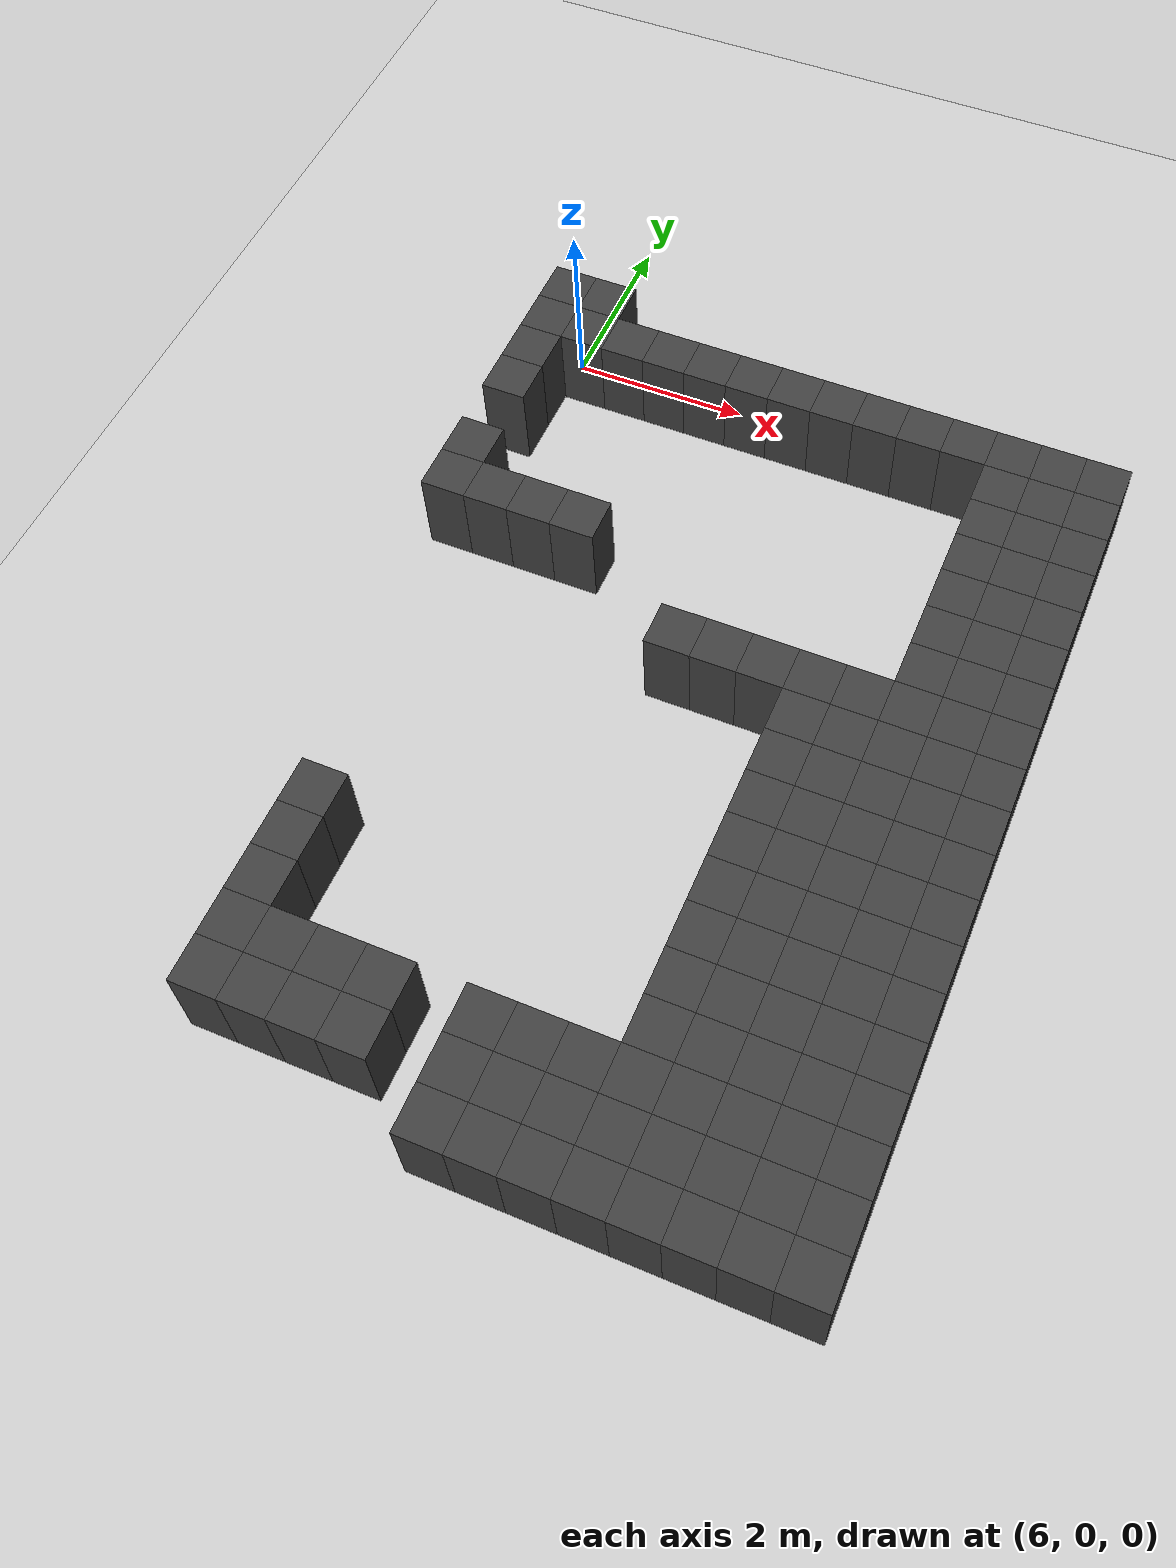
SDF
<sdf version="1.7">
 <world name="map_14802">
  <model name="ground_plane">
   <static>true</static>
   <link name="link">
    <collision name="collision">
     <geometry><plane><normal>0 0 1</normal><size>200 200</size></plane></geometry>
    </collision>
    <visual name="visual">
     <geometry><plane><normal>0 0 1</normal><size>200 200</size></plane></geometry>
     <material><ambient>0.8 0.8 0.8 1</ambient><diffuse>0.8 0.8 0.8 1</diffuse></material>
    </visual>
   </link>
  </model>
  <model name="maze_environment">
   <static>true</static>
   <link name="wall_888">
    <pose>5.750 0.250 0.500 0 0 0</pose>
    <collision name="col"><geometry><box><size>0.5 0.5 1.0</size></box></geometry></collision>
    <visual name="vis">
     <geometry><box><size>0.5 0.5 1.0</size></box></geometry>
     <material><ambient>0.15 0.15 0.15 1</ambient><diffuse>0.25 0.25 0.25 1</diffuse></material>
    </visual>
   </link>
   <link name="wall_889">
    <pose>6.250 0.250 0.500 0 0 0</pose>
    <collision name="col"><geometry><box><size>0.5 0.5 1.0</size></box></geometry></collision>
    <visual name="vis">
     <geometry><box><size>0.5 0.5 1.0</size></box></geometry>
     <material><ambient>0.15 0.15 0.15 1</ambient><diffuse>0.25 0.25 0.25 1</diffuse></material>
    </visual>
   </link>
   <link name="wall_926">
    <pose>5.750 -0.250 0.500 0 0 0</pose>
    <collision name="col"><geometry><box><size>0.5 0.5 1.0</size></box></geometry></collision>
    <visual name="vis">
     <geometry><box><size>0.5 0.5 1.0</size></box></geometry>
     <material><ambient>0.15 0.15 0.15 1</ambient><diffuse>0.25 0.25 0.25 1</diffuse></material>
    </visual>
   </link>
   <link name="wall_927">
    <pose>6.250 -0.250 0.500 0 0 0</pose>
    <collision name="col"><geometry><box><size>0.5 0.5 1.0</size></box></geometry></collision>
    <visual name="vis">
     <geometry><box><size>0.5 0.5 1.0</size></box></geometry>
     <material><ambient>0.15 0.15 0.15 1</ambient><diffuse>0.25 0.25 0.25 1</diffuse></material>
    </visual>
   </link>
   <link name="wall_928">
    <pose>6.750 -0.250 0.500 0 0 0</pose>
    <collision name="col"><geometry><box><size>0.5 0.5 1.0</size></box></geometry></collision>
    <visual name="vis">
     <geometry><box><size>0.5 0.5 1.0</size></box></geometry>
     <material><ambient>0.15 0.15 0.15 1</ambient><diffuse>0.25 0.25 0.25 1</diffuse></material>
    </visual>
   </link>
   <link name="wall_929">
    <pose>7.250 -0.250 0.500 0 0 0</pose>
    <collision name="col"><geometry><box><size>0.5 0.5 1.0</size></box></geometry></collision>
    <visual name="vis">
     <geometry><box><size>0.5 0.5 1.0</size></box></geometry>
     <material><ambient>0.15 0.15 0.15 1</ambient><diffuse>0.25 0.25 0.25 1</diffuse></material>
    </visual>
   </link>
   <link name="wall_930">
    <pose>7.750 -0.250 0.500 0 0 0</pose>
    <collision name="col"><geometry><box><size>0.5 0.5 1.0</size></box></geometry></collision>
    <visual name="vis">
     <geometry><box><size>0.5 0.5 1.0</size></box></geometry>
     <material><ambient>0.15 0.15 0.15 1</ambient><diffuse>0.25 0.25 0.25 1</diffuse></material>
    </visual>
   </link>
   <link name="wall_931">
    <pose>8.250 -0.250 0.500 0 0 0</pose>
    <collision name="col"><geometry><box><size>0.5 0.5 1.0</size></box></geometry></collision>
    <visual name="vis">
     <geometry><box><size>0.5 0.5 1.0</size></box></geometry>
     <material><ambient>0.15 0.15 0.15 1</ambient><diffuse>0.25 0.25 0.25 1</diffuse></material>
    </visual>
   </link>
   <link name="wall_932">
    <pose>8.750 -0.250 0.500 0 0 0</pose>
    <collision name="col"><geometry><box><size>0.5 0.5 1.0</size></box></geometry></collision>
    <visual name="vis">
     <geometry><box><size>0.5 0.5 1.0</size></box></geometry>
     <material><ambient>0.15 0.15 0.15 1</ambient><diffuse>0.25 0.25 0.25 1</diffuse></material>
    </visual>
   </link>
   <link name="wall_933">
    <pose>9.250 -0.250 0.500 0 0 0</pose>
    <collision name="col"><geometry><box><size>0.5 0.5 1.0</size></box></geometry></collision>
    <visual name="vis">
     <geometry><box><size>0.5 0.5 1.0</size></box></geometry>
     <material><ambient>0.15 0.15 0.15 1</ambient><diffuse>0.25 0.25 0.25 1</diffuse></material>
    </visual>
   </link>
   <link name="wall_934">
    <pose>9.750 -0.250 0.500 0 0 0</pose>
    <collision name="col"><geometry><box><size>0.5 0.5 1.0</size></box></geometry></collision>
    <visual name="vis">
     <geometry><box><size>0.5 0.5 1.0</size></box></geometry>
     <material><ambient>0.15 0.15 0.15 1</ambient><diffuse>0.25 0.25 0.25 1</diffuse></material>
    </visual>
   </link>
   <link name="wall_935">
    <pose>10.250 -0.250 0.500 0 0 0</pose>
    <collision name="col"><geometry><box><size>0.5 0.5 1.0</size></box></geometry></collision>
    <visual name="vis">
     <geometry><box><size>0.5 0.5 1.0</size></box></geometry>
     <material><ambient>0.15 0.15 0.15 1</ambient><diffuse>0.25 0.25 0.25 1</diffuse></material>
    </visual>
   </link>
   <link name="wall_936">
    <pose>10.750 -0.250 0.500 0 0 0</pose>
    <collision name="col"><geometry><box><size>0.5 0.5 1.0</size></box></geometry></collision>
    <visual name="vis">
     <geometry><box><size>0.5 0.5 1.0</size></box></geometry>
     <material><ambient>0.15 0.15 0.15 1</ambient><diffuse>0.25 0.25 0.25 1</diffuse></material>
    </visual>
   </link>
   <link name="wall_937">
    <pose>11.250 -0.250 0.500 0 0 0</pose>
    <collision name="col"><geometry><box><size>0.5 0.5 1.0</size></box></geometry></collision>
    <visual name="vis">
     <geometry><box><size>0.5 0.5 1.0</size></box></geometry>
     <material><ambient>0.15 0.15 0.15 1</ambient><diffuse>0.25 0.25 0.25 1</diffuse></material>
    </visual>
   </link>
   <link name="wall_938">
    <pose>11.750 -0.250 0.500 0 0 0</pose>
    <collision name="col"><geometry><box><size>0.5 0.5 1.0</size></box></geometry></collision>
    <visual name="vis">
     <geometry><box><size>0.5 0.5 1.0</size></box></geometry>
     <material><ambient>0.15 0.15 0.15 1</ambient><diffuse>0.25 0.25 0.25 1</diffuse></material>
    </visual>
   </link>
   <link name="wall_939">
    <pose>12.250 -0.250 0.500 0 0 0</pose>
    <collision name="col"><geometry><box><size>0.5 0.5 1.0</size></box></geometry></collision>
    <visual name="vis">
     <geometry><box><size>0.5 0.5 1.0</size></box></geometry>
     <material><ambient>0.15 0.15 0.15 1</ambient><diffuse>0.25 0.25 0.25 1</diffuse></material>
    </visual>
   </link>
   <link name="wall_964">
    <pose>5.750 -0.750 0.500 0 0 0</pose>
    <collision name="col"><geometry><box><size>0.5 0.5 1.0</size></box></geometry></collision>
    <visual name="vis">
     <geometry><box><size>0.5 0.5 1.0</size></box></geometry>
     <material><ambient>0.15 0.15 0.15 1</ambient><diffuse>0.25 0.25 0.25 1</diffuse></material>
    </visual>
   </link>
   <link name="wall_965">
    <pose>11.250 -0.750 0.500 0 0 0</pose>
    <collision name="col"><geometry><box><size>0.5 0.5 1.0</size></box></geometry></collision>
    <visual name="vis">
     <geometry><box><size>0.5 0.5 1.0</size></box></geometry>
     <material><ambient>0.15 0.15 0.15 1</ambient><diffuse>0.25 0.25 0.25 1</diffuse></material>
    </visual>
   </link>
   <link name="wall_966">
    <pose>11.750 -0.750 0.500 0 0 0</pose>
    <collision name="col"><geometry><box><size>0.5 0.5 1.0</size></box></geometry></collision>
    <visual name="vis">
     <geometry><box><size>0.5 0.5 1.0</size></box></geometry>
     <material><ambient>0.15 0.15 0.15 1</ambient><diffuse>0.25 0.25 0.25 1</diffuse></material>
    </visual>
   </link>
   <link name="wall_967">
    <pose>12.250 -0.750 0.500 0 0 0</pose>
    <collision name="col"><geometry><box><size>0.5 0.5 1.0</size></box></geometry></collision>
    <visual name="vis">
     <geometry><box><size>0.5 0.5 1.0</size></box></geometry>
     <material><ambient>0.15 0.15 0.15 1</ambient><diffuse>0.25 0.25 0.25 1</diffuse></material>
    </visual>
   </link>
   <link name="wall_988">
    <pose>5.750 -1.250 0.500 0 0 0</pose>
    <collision name="col"><geometry><box><size>0.5 0.5 1.0</size></box></geometry></collision>
    <visual name="vis">
     <geometry><box><size>0.5 0.5 1.0</size></box></geometry>
     <material><ambient>0.15 0.15 0.15 1</ambient><diffuse>0.25 0.25 0.25 1</diffuse></material>
    </visual>
   </link>
   <link name="wall_989">
    <pose>11.250 -1.250 0.500 0 0 0</pose>
    <collision name="col"><geometry><box><size>0.5 0.5 1.0</size></box></geometry></collision>
    <visual name="vis">
     <geometry><box><size>0.5 0.5 1.0</size></box></geometry>
     <material><ambient>0.15 0.15 0.15 1</ambient><diffuse>0.25 0.25 0.25 1</diffuse></material>
    </visual>
   </link>
   <link name="wall_990">
    <pose>11.750 -1.250 0.500 0 0 0</pose>
    <collision name="col"><geometry><box><size>0.5 0.5 1.0</size></box></geometry></collision>
    <visual name="vis">
     <geometry><box><size>0.5 0.5 1.0</size></box></geometry>
     <material><ambient>0.15 0.15 0.15 1</ambient><diffuse>0.25 0.25 0.25 1</diffuse></material>
    </visual>
   </link>
   <link name="wall_991">
    <pose>12.250 -1.250 0.500 0 0 0</pose>
    <collision name="col"><geometry><box><size>0.5 0.5 1.0</size></box></geometry></collision>
    <visual name="vis">
     <geometry><box><size>0.5 0.5 1.0</size></box></geometry>
     <material><ambient>0.15 0.15 0.15 1</ambient><diffuse>0.25 0.25 0.25 1</diffuse></material>
    </visual>
   </link>
   <link name="wall_1011">
    <pose>11.250 -1.750 0.500 0 0 0</pose>
    <collision name="col"><geometry><box><size>0.5 0.5 1.0</size></box></geometry></collision>
    <visual name="vis">
     <geometry><box><size>0.5 0.5 1.0</size></box></geometry>
     <material><ambient>0.15 0.15 0.15 1</ambient><diffuse>0.25 0.25 0.25 1</diffuse></material>
    </visual>
   </link>
   <link name="wall_1012">
    <pose>11.750 -1.750 0.500 0 0 0</pose>
    <collision name="col"><geometry><box><size>0.5 0.5 1.0</size></box></geometry></collision>
    <visual name="vis">
     <geometry><box><size>0.5 0.5 1.0</size></box></geometry>
     <material><ambient>0.15 0.15 0.15 1</ambient><diffuse>0.25 0.25 0.25 1</diffuse></material>
    </visual>
   </link>
   <link name="wall_1013">
    <pose>12.250 -1.750 0.500 0 0 0</pose>
    <collision name="col"><geometry><box><size>0.5 0.5 1.0</size></box></geometry></collision>
    <visual name="vis">
     <geometry><box><size>0.5 0.5 1.0</size></box></geometry>
     <material><ambient>0.15 0.15 0.15 1</ambient><diffuse>0.25 0.25 0.25 1</diffuse></material>
    </visual>
   </link>
   <link name="wall_1035">
    <pose>5.750 -2.250 0.500 0 0 0</pose>
    <collision name="col"><geometry><box><size>0.5 0.5 1.0</size></box></geometry></collision>
    <visual name="vis">
     <geometry><box><size>0.5 0.5 1.0</size></box></geometry>
     <material><ambient>0.15 0.15 0.15 1</ambient><diffuse>0.25 0.25 0.25 1</diffuse></material>
    </visual>
   </link>
   <link name="wall_1036">
    <pose>11.250 -2.250 0.500 0 0 0</pose>
    <collision name="col"><geometry><box><size>0.5 0.5 1.0</size></box></geometry></collision>
    <visual name="vis">
     <geometry><box><size>0.5 0.5 1.0</size></box></geometry>
     <material><ambient>0.15 0.15 0.15 1</ambient><diffuse>0.25 0.25 0.25 1</diffuse></material>
    </visual>
   </link>
   <link name="wall_1037">
    <pose>11.750 -2.250 0.500 0 0 0</pose>
    <collision name="col"><geometry><box><size>0.5 0.5 1.0</size></box></geometry></collision>
    <visual name="vis">
     <geometry><box><size>0.5 0.5 1.0</size></box></geometry>
     <material><ambient>0.15 0.15 0.15 1</ambient><diffuse>0.25 0.25 0.25 1</diffuse></material>
    </visual>
   </link>
   <link name="wall_1038">
    <pose>12.250 -2.250 0.500 0 0 0</pose>
    <collision name="col"><geometry><box><size>0.5 0.5 1.0</size></box></geometry></collision>
    <visual name="vis">
     <geometry><box><size>0.5 0.5 1.0</size></box></geometry>
     <material><ambient>0.15 0.15 0.15 1</ambient><diffuse>0.25 0.25 0.25 1</diffuse></material>
    </visual>
   </link>
   <link name="wall_1060">
    <pose>5.750 -2.750 0.500 0 0 0</pose>
    <collision name="col"><geometry><box><size>0.5 0.5 1.0</size></box></geometry></collision>
    <visual name="vis">
     <geometry><box><size>0.5 0.5 1.0</size></box></geometry>
     <material><ambient>0.15 0.15 0.15 1</ambient><diffuse>0.25 0.25 0.25 1</diffuse></material>
    </visual>
   </link>
   <link name="wall_1061">
    <pose>6.250 -2.750 0.500 0 0 0</pose>
    <collision name="col"><geometry><box><size>0.5 0.5 1.0</size></box></geometry></collision>
    <visual name="vis">
     <geometry><box><size>0.5 0.5 1.0</size></box></geometry>
     <material><ambient>0.15 0.15 0.15 1</ambient><diffuse>0.25 0.25 0.25 1</diffuse></material>
    </visual>
   </link>
   <link name="wall_1062">
    <pose>6.750 -2.750 0.500 0 0 0</pose>
    <collision name="col"><geometry><box><size>0.5 0.5 1.0</size></box></geometry></collision>
    <visual name="vis">
     <geometry><box><size>0.5 0.5 1.0</size></box></geometry>
     <material><ambient>0.15 0.15 0.15 1</ambient><diffuse>0.25 0.25 0.25 1</diffuse></material>
    </visual>
   </link>
   <link name="wall_1063">
    <pose>7.250 -2.750 0.500 0 0 0</pose>
    <collision name="col"><geometry><box><size>0.5 0.5 1.0</size></box></geometry></collision>
    <visual name="vis">
     <geometry><box><size>0.5 0.5 1.0</size></box></geometry>
     <material><ambient>0.15 0.15 0.15 1</ambient><diffuse>0.25 0.25 0.25 1</diffuse></material>
    </visual>
   </link>
   <link name="wall_1064">
    <pose>11.250 -2.750 0.500 0 0 0</pose>
    <collision name="col"><geometry><box><size>0.5 0.5 1.0</size></box></geometry></collision>
    <visual name="vis">
     <geometry><box><size>0.5 0.5 1.0</size></box></geometry>
     <material><ambient>0.15 0.15 0.15 1</ambient><diffuse>0.25 0.25 0.25 1</diffuse></material>
    </visual>
   </link>
   <link name="wall_1065">
    <pose>11.750 -2.750 0.500 0 0 0</pose>
    <collision name="col"><geometry><box><size>0.5 0.5 1.0</size></box></geometry></collision>
    <visual name="vis">
     <geometry><box><size>0.5 0.5 1.0</size></box></geometry>
     <material><ambient>0.15 0.15 0.15 1</ambient><diffuse>0.25 0.25 0.25 1</diffuse></material>
    </visual>
   </link>
   <link name="wall_1066">
    <pose>12.250 -2.750 0.500 0 0 0</pose>
    <collision name="col"><geometry><box><size>0.5 0.5 1.0</size></box></geometry></collision>
    <visual name="vis">
     <geometry><box><size>0.5 0.5 1.0</size></box></geometry>
     <material><ambient>0.15 0.15 0.15 1</ambient><diffuse>0.25 0.25 0.25 1</diffuse></material>
    </visual>
   </link>
   <link name="wall_1088">
    <pose>11.250 -3.250 0.500 0 0 0</pose>
    <collision name="col"><geometry><box><size>0.5 0.5 1.0</size></box></geometry></collision>
    <visual name="vis">
     <geometry><box><size>0.5 0.5 1.0</size></box></geometry>
     <material><ambient>0.15 0.15 0.15 1</ambient><diffuse>0.25 0.25 0.25 1</diffuse></material>
    </visual>
   </link>
   <link name="wall_1089">
    <pose>11.750 -3.250 0.500 0 0 0</pose>
    <collision name="col"><geometry><box><size>0.5 0.5 1.0</size></box></geometry></collision>
    <visual name="vis">
     <geometry><box><size>0.5 0.5 1.0</size></box></geometry>
     <material><ambient>0.15 0.15 0.15 1</ambient><diffuse>0.25 0.25 0.25 1</diffuse></material>
    </visual>
   </link>
   <link name="wall_1090">
    <pose>12.250 -3.250 0.500 0 0 0</pose>
    <collision name="col"><geometry><box><size>0.5 0.5 1.0</size></box></geometry></collision>
    <visual name="vis">
     <geometry><box><size>0.5 0.5 1.0</size></box></geometry>
     <material><ambient>0.15 0.15 0.15 1</ambient><diffuse>0.25 0.25 0.25 1</diffuse></material>
    </visual>
   </link>
   <link name="wall_1112">
    <pose>8.750 -3.750 0.500 0 0 0</pose>
    <collision name="col"><geometry><box><size>0.5 0.5 1.0</size></box></geometry></collision>
    <visual name="vis">
     <geometry><box><size>0.5 0.5 1.0</size></box></geometry>
     <material><ambient>0.15 0.15 0.15 1</ambient><diffuse>0.25 0.25 0.25 1</diffuse></material>
    </visual>
   </link>
   <link name="wall_1113">
    <pose>9.250 -3.750 0.500 0 0 0</pose>
    <collision name="col"><geometry><box><size>0.5 0.5 1.0</size></box></geometry></collision>
    <visual name="vis">
     <geometry><box><size>0.5 0.5 1.0</size></box></geometry>
     <material><ambient>0.15 0.15 0.15 1</ambient><diffuse>0.25 0.25 0.25 1</diffuse></material>
    </visual>
   </link>
   <link name="wall_1114">
    <pose>9.750 -3.750 0.500 0 0 0</pose>
    <collision name="col"><geometry><box><size>0.5 0.5 1.0</size></box></geometry></collision>
    <visual name="vis">
     <geometry><box><size>0.5 0.5 1.0</size></box></geometry>
     <material><ambient>0.15 0.15 0.15 1</ambient><diffuse>0.25 0.25 0.25 1</diffuse></material>
    </visual>
   </link>
   <link name="wall_1115">
    <pose>10.250 -3.750 0.500 0 0 0</pose>
    <collision name="col"><geometry><box><size>0.5 0.5 1.0</size></box></geometry></collision>
    <visual name="vis">
     <geometry><box><size>0.5 0.5 1.0</size></box></geometry>
     <material><ambient>0.15 0.15 0.15 1</ambient><diffuse>0.25 0.25 0.25 1</diffuse></material>
    </visual>
   </link>
   <link name="wall_1116">
    <pose>10.750 -3.750 0.500 0 0 0</pose>
    <collision name="col"><geometry><box><size>0.5 0.5 1.0</size></box></geometry></collision>
    <visual name="vis">
     <geometry><box><size>0.5 0.5 1.0</size></box></geometry>
     <material><ambient>0.15 0.15 0.15 1</ambient><diffuse>0.25 0.25 0.25 1</diffuse></material>
    </visual>
   </link>
   <link name="wall_1117">
    <pose>11.250 -3.750 0.500 0 0 0</pose>
    <collision name="col"><geometry><box><size>0.5 0.5 1.0</size></box></geometry></collision>
    <visual name="vis">
     <geometry><box><size>0.5 0.5 1.0</size></box></geometry>
     <material><ambient>0.15 0.15 0.15 1</ambient><diffuse>0.25 0.25 0.25 1</diffuse></material>
    </visual>
   </link>
   <link name="wall_1118">
    <pose>11.750 -3.750 0.500 0 0 0</pose>
    <collision name="col"><geometry><box><size>0.5 0.5 1.0</size></box></geometry></collision>
    <visual name="vis">
     <geometry><box><size>0.5 0.5 1.0</size></box></geometry>
     <material><ambient>0.15 0.15 0.15 1</ambient><diffuse>0.25 0.25 0.25 1</diffuse></material>
    </visual>
   </link>
   <link name="wall_1119">
    <pose>12.250 -3.750 0.500 0 0 0</pose>
    <collision name="col"><geometry><box><size>0.5 0.5 1.0</size></box></geometry></collision>
    <visual name="vis">
     <geometry><box><size>0.5 0.5 1.0</size></box></geometry>
     <material><ambient>0.15 0.15 0.15 1</ambient><diffuse>0.25 0.25 0.25 1</diffuse></material>
    </visual>
   </link>
   <link name="wall_1136">
    <pose>10.250 -4.250 0.500 0 0 0</pose>
    <collision name="col"><geometry><box><size>0.5 0.5 1.0</size></box></geometry></collision>
    <visual name="vis">
     <geometry><box><size>0.5 0.5 1.0</size></box></geometry>
     <material><ambient>0.15 0.15 0.15 1</ambient><diffuse>0.25 0.25 0.25 1</diffuse></material>
    </visual>
   </link>
   <link name="wall_1137">
    <pose>10.750 -4.250 0.500 0 0 0</pose>
    <collision name="col"><geometry><box><size>0.5 0.5 1.0</size></box></geometry></collision>
    <visual name="vis">
     <geometry><box><size>0.5 0.5 1.0</size></box></geometry>
     <material><ambient>0.15 0.15 0.15 1</ambient><diffuse>0.25 0.25 0.25 1</diffuse></material>
    </visual>
   </link>
   <link name="wall_1138">
    <pose>11.250 -4.250 0.500 0 0 0</pose>
    <collision name="col"><geometry><box><size>0.5 0.5 1.0</size></box></geometry></collision>
    <visual name="vis">
     <geometry><box><size>0.5 0.5 1.0</size></box></geometry>
     <material><ambient>0.15 0.15 0.15 1</ambient><diffuse>0.25 0.25 0.25 1</diffuse></material>
    </visual>
   </link>
   <link name="wall_1139">
    <pose>11.750 -4.250 0.500 0 0 0</pose>
    <collision name="col"><geometry><box><size>0.5 0.5 1.0</size></box></geometry></collision>
    <visual name="vis">
     <geometry><box><size>0.5 0.5 1.0</size></box></geometry>
     <material><ambient>0.15 0.15 0.15 1</ambient><diffuse>0.25 0.25 0.25 1</diffuse></material>
    </visual>
   </link>
   <link name="wall_1140">
    <pose>12.250 -4.250 0.500 0 0 0</pose>
    <collision name="col"><geometry><box><size>0.5 0.5 1.0</size></box></geometry></collision>
    <visual name="vis">
     <geometry><box><size>0.5 0.5 1.0</size></box></geometry>
     <material><ambient>0.15 0.15 0.15 1</ambient><diffuse>0.25 0.25 0.25 1</diffuse></material>
    </visual>
   </link>
   <link name="wall_1153">
    <pose>10.250 -4.750 0.500 0 0 0</pose>
    <collision name="col"><geometry><box><size>0.5 0.5 1.0</size></box></geometry></collision>
    <visual name="vis">
     <geometry><box><size>0.5 0.5 1.0</size></box></geometry>
     <material><ambient>0.15 0.15 0.15 1</ambient><diffuse>0.25 0.25 0.25 1</diffuse></material>
    </visual>
   </link>
   <link name="wall_1154">
    <pose>10.750 -4.750 0.500 0 0 0</pose>
    <collision name="col"><geometry><box><size>0.5 0.5 1.0</size></box></geometry></collision>
    <visual name="vis">
     <geometry><box><size>0.5 0.5 1.0</size></box></geometry>
     <material><ambient>0.15 0.15 0.15 1</ambient><diffuse>0.25 0.25 0.25 1</diffuse></material>
    </visual>
   </link>
   <link name="wall_1155">
    <pose>11.250 -4.750 0.500 0 0 0</pose>
    <collision name="col"><geometry><box><size>0.5 0.5 1.0</size></box></geometry></collision>
    <visual name="vis">
     <geometry><box><size>0.5 0.5 1.0</size></box></geometry>
     <material><ambient>0.15 0.15 0.15 1</ambient><diffuse>0.25 0.25 0.25 1</diffuse></material>
    </visual>
   </link>
   <link name="wall_1156">
    <pose>11.750 -4.750 0.500 0 0 0</pose>
    <collision name="col"><geometry><box><size>0.5 0.5 1.0</size></box></geometry></collision>
    <visual name="vis">
     <geometry><box><size>0.5 0.5 1.0</size></box></geometry>
     <material><ambient>0.15 0.15 0.15 1</ambient><diffuse>0.25 0.25 0.25 1</diffuse></material>
    </visual>
   </link>
   <link name="wall_1157">
    <pose>12.250 -4.750 0.500 0 0 0</pose>
    <collision name="col"><geometry><box><size>0.5 0.5 1.0</size></box></geometry></collision>
    <visual name="vis">
     <geometry><box><size>0.5 0.5 1.0</size></box></geometry>
     <material><ambient>0.15 0.15 0.15 1</ambient><diffuse>0.25 0.25 0.25 1</diffuse></material>
    </visual>
   </link>
   <link name="wall_1181">
    <pose>10.250 -5.250 0.500 0 0 0</pose>
    <collision name="col"><geometry><box><size>0.5 0.5 1.0</size></box></geometry></collision>
    <visual name="vis">
     <geometry><box><size>0.5 0.5 1.0</size></box></geometry>
     <material><ambient>0.15 0.15 0.15 1</ambient><diffuse>0.25 0.25 0.25 1</diffuse></material>
    </visual>
   </link>
   <link name="wall_1182">
    <pose>10.750 -5.250 0.500 0 0 0</pose>
    <collision name="col"><geometry><box><size>0.5 0.5 1.0</size></box></geometry></collision>
    <visual name="vis">
     <geometry><box><size>0.5 0.5 1.0</size></box></geometry>
     <material><ambient>0.15 0.15 0.15 1</ambient><diffuse>0.25 0.25 0.25 1</diffuse></material>
    </visual>
   </link>
   <link name="wall_1183">
    <pose>11.250 -5.250 0.500 0 0 0</pose>
    <collision name="col"><geometry><box><size>0.5 0.5 1.0</size></box></geometry></collision>
    <visual name="vis">
     <geometry><box><size>0.5 0.5 1.0</size></box></geometry>
     <material><ambient>0.15 0.15 0.15 1</ambient><diffuse>0.25 0.25 0.25 1</diffuse></material>
    </visual>
   </link>
   <link name="wall_1184">
    <pose>11.750 -5.250 0.500 0 0 0</pose>
    <collision name="col"><geometry><box><size>0.5 0.5 1.0</size></box></geometry></collision>
    <visual name="vis">
     <geometry><box><size>0.5 0.5 1.0</size></box></geometry>
     <material><ambient>0.15 0.15 0.15 1</ambient><diffuse>0.25 0.25 0.25 1</diffuse></material>
    </visual>
   </link>
   <link name="wall_1185">
    <pose>12.250 -5.250 0.500 0 0 0</pose>
    <collision name="col"><geometry><box><size>0.5 0.5 1.0</size></box></geometry></collision>
    <visual name="vis">
     <geometry><box><size>0.5 0.5 1.0</size></box></geometry>
     <material><ambient>0.15 0.15 0.15 1</ambient><diffuse>0.25 0.25 0.25 1</diffuse></material>
    </visual>
   </link>
   <link name="wall_1202">
    <pose>10.250 -5.750 0.500 0 0 0</pose>
    <collision name="col"><geometry><box><size>0.5 0.5 1.0</size></box></geometry></collision>
    <visual name="vis">
     <geometry><box><size>0.5 0.5 1.0</size></box></geometry>
     <material><ambient>0.15 0.15 0.15 1</ambient><diffuse>0.25 0.25 0.25 1</diffuse></material>
    </visual>
   </link>
   <link name="wall_1203">
    <pose>10.750 -5.750 0.500 0 0 0</pose>
    <collision name="col"><geometry><box><size>0.5 0.5 1.0</size></box></geometry></collision>
    <visual name="vis">
     <geometry><box><size>0.5 0.5 1.0</size></box></geometry>
     <material><ambient>0.15 0.15 0.15 1</ambient><diffuse>0.25 0.25 0.25 1</diffuse></material>
    </visual>
   </link>
   <link name="wall_1204">
    <pose>11.250 -5.750 0.500 0 0 0</pose>
    <collision name="col"><geometry><box><size>0.5 0.5 1.0</size></box></geometry></collision>
    <visual name="vis">
     <geometry><box><size>0.5 0.5 1.0</size></box></geometry>
     <material><ambient>0.15 0.15 0.15 1</ambient><diffuse>0.25 0.25 0.25 1</diffuse></material>
    </visual>
   </link>
   <link name="wall_1205">
    <pose>11.750 -5.750 0.500 0 0 0</pose>
    <collision name="col"><geometry><box><size>0.5 0.5 1.0</size></box></geometry></collision>
    <visual name="vis">
     <geometry><box><size>0.5 0.5 1.0</size></box></geometry>
     <material><ambient>0.15 0.15 0.15 1</ambient><diffuse>0.25 0.25 0.25 1</diffuse></material>
    </visual>
   </link>
   <link name="wall_1206">
    <pose>12.250 -5.750 0.500 0 0 0</pose>
    <collision name="col"><geometry><box><size>0.5 0.5 1.0</size></box></geometry></collision>
    <visual name="vis">
     <geometry><box><size>0.5 0.5 1.0</size></box></geometry>
     <material><ambient>0.15 0.15 0.15 1</ambient><diffuse>0.25 0.25 0.25 1</diffuse></material>
    </visual>
   </link>
   <link name="wall_1235">
    <pose>10.250 -6.250 0.500 0 0 0</pose>
    <collision name="col"><geometry><box><size>0.5 0.5 1.0</size></box></geometry></collision>
    <visual name="vis">
     <geometry><box><size>0.5 0.5 1.0</size></box></geometry>
     <material><ambient>0.15 0.15 0.15 1</ambient><diffuse>0.25 0.25 0.25 1</diffuse></material>
    </visual>
   </link>
   <link name="wall_1236">
    <pose>10.750 -6.250 0.500 0 0 0</pose>
    <collision name="col"><geometry><box><size>0.5 0.5 1.0</size></box></geometry></collision>
    <visual name="vis">
     <geometry><box><size>0.5 0.5 1.0</size></box></geometry>
     <material><ambient>0.15 0.15 0.15 1</ambient><diffuse>0.25 0.25 0.25 1</diffuse></material>
    </visual>
   </link>
   <link name="wall_1237">
    <pose>11.250 -6.250 0.500 0 0 0</pose>
    <collision name="col"><geometry><box><size>0.5 0.5 1.0</size></box></geometry></collision>
    <visual name="vis">
     <geometry><box><size>0.5 0.5 1.0</size></box></geometry>
     <material><ambient>0.15 0.15 0.15 1</ambient><diffuse>0.25 0.25 0.25 1</diffuse></material>
    </visual>
   </link>
   <link name="wall_1238">
    <pose>11.750 -6.250 0.500 0 0 0</pose>
    <collision name="col"><geometry><box><size>0.5 0.5 1.0</size></box></geometry></collision>
    <visual name="vis">
     <geometry><box><size>0.5 0.5 1.0</size></box></geometry>
     <material><ambient>0.15 0.15 0.15 1</ambient><diffuse>0.25 0.25 0.25 1</diffuse></material>
    </visual>
   </link>
   <link name="wall_1239">
    <pose>12.250 -6.250 0.500 0 0 0</pose>
    <collision name="col"><geometry><box><size>0.5 0.5 1.0</size></box></geometry></collision>
    <visual name="vis">
     <geometry><box><size>0.5 0.5 1.0</size></box></geometry>
     <material><ambient>0.15 0.15 0.15 1</ambient><diffuse>0.25 0.25 0.25 1</diffuse></material>
    </visual>
   </link>
   <link name="wall_1269">
    <pose>6.250 -6.750 0.500 0 0 0</pose>
    <collision name="col"><geometry><box><size>0.5 0.5 1.0</size></box></geometry></collision>
    <visual name="vis">
     <geometry><box><size>0.5 0.5 1.0</size></box></geometry>
     <material><ambient>0.15 0.15 0.15 1</ambient><diffuse>0.25 0.25 0.25 1</diffuse></material>
    </visual>
   </link>
   <link name="wall_1270">
    <pose>10.250 -6.750 0.500 0 0 0</pose>
    <collision name="col"><geometry><box><size>0.5 0.5 1.0</size></box></geometry></collision>
    <visual name="vis">
     <geometry><box><size>0.5 0.5 1.0</size></box></geometry>
     <material><ambient>0.15 0.15 0.15 1</ambient><diffuse>0.25 0.25 0.25 1</diffuse></material>
    </visual>
   </link>
   <link name="wall_1271">
    <pose>10.750 -6.750 0.500 0 0 0</pose>
    <collision name="col"><geometry><box><size>0.5 0.5 1.0</size></box></geometry></collision>
    <visual name="vis">
     <geometry><box><size>0.5 0.5 1.0</size></box></geometry>
     <material><ambient>0.15 0.15 0.15 1</ambient><diffuse>0.25 0.25 0.25 1</diffuse></material>
    </visual>
   </link>
   <link name="wall_1272">
    <pose>11.250 -6.750 0.500 0 0 0</pose>
    <collision name="col"><geometry><box><size>0.5 0.5 1.0</size></box></geometry></collision>
    <visual name="vis">
     <geometry><box><size>0.5 0.5 1.0</size></box></geometry>
     <material><ambient>0.15 0.15 0.15 1</ambient><diffuse>0.25 0.25 0.25 1</diffuse></material>
    </visual>
   </link>
   <link name="wall_1273">
    <pose>11.750 -6.750 0.500 0 0 0</pose>
    <collision name="col"><geometry><box><size>0.5 0.5 1.0</size></box></geometry></collision>
    <visual name="vis">
     <geometry><box><size>0.5 0.5 1.0</size></box></geometry>
     <material><ambient>0.15 0.15 0.15 1</ambient><diffuse>0.25 0.25 0.25 1</diffuse></material>
    </visual>
   </link>
   <link name="wall_1274">
    <pose>12.250 -6.750 0.500 0 0 0</pose>
    <collision name="col"><geometry><box><size>0.5 0.5 1.0</size></box></geometry></collision>
    <visual name="vis">
     <geometry><box><size>0.5 0.5 1.0</size></box></geometry>
     <material><ambient>0.15 0.15 0.15 1</ambient><diffuse>0.25 0.25 0.25 1</diffuse></material>
    </visual>
   </link>
   <link name="wall_1304">
    <pose>6.250 -7.250 0.500 0 0 0</pose>
    <collision name="col"><geometry><box><size>0.5 0.5 1.0</size></box></geometry></collision>
    <visual name="vis">
     <geometry><box><size>0.5 0.5 1.0</size></box></geometry>
     <material><ambient>0.15 0.15 0.15 1</ambient><diffuse>0.25 0.25 0.25 1</diffuse></material>
    </visual>
   </link>
   <link name="wall_1305">
    <pose>10.250 -7.250 0.500 0 0 0</pose>
    <collision name="col"><geometry><box><size>0.5 0.5 1.0</size></box></geometry></collision>
    <visual name="vis">
     <geometry><box><size>0.5 0.5 1.0</size></box></geometry>
     <material><ambient>0.15 0.15 0.15 1</ambient><diffuse>0.25 0.25 0.25 1</diffuse></material>
    </visual>
   </link>
   <link name="wall_1306">
    <pose>10.750 -7.250 0.500 0 0 0</pose>
    <collision name="col"><geometry><box><size>0.5 0.5 1.0</size></box></geometry></collision>
    <visual name="vis">
     <geometry><box><size>0.5 0.5 1.0</size></box></geometry>
     <material><ambient>0.15 0.15 0.15 1</ambient><diffuse>0.25 0.25 0.25 1</diffuse></material>
    </visual>
   </link>
   <link name="wall_1307">
    <pose>11.250 -7.250 0.500 0 0 0</pose>
    <collision name="col"><geometry><box><size>0.5 0.5 1.0</size></box></geometry></collision>
    <visual name="vis">
     <geometry><box><size>0.5 0.5 1.0</size></box></geometry>
     <material><ambient>0.15 0.15 0.15 1</ambient><diffuse>0.25 0.25 0.25 1</diffuse></material>
    </visual>
   </link>
   <link name="wall_1308">
    <pose>11.750 -7.250 0.500 0 0 0</pose>
    <collision name="col"><geometry><box><size>0.5 0.5 1.0</size></box></geometry></collision>
    <visual name="vis">
     <geometry><box><size>0.5 0.5 1.0</size></box></geometry>
     <material><ambient>0.15 0.15 0.15 1</ambient><diffuse>0.25 0.25 0.25 1</diffuse></material>
    </visual>
   </link>
   <link name="wall_1309">
    <pose>12.250 -7.250 0.500 0 0 0</pose>
    <collision name="col"><geometry><box><size>0.5 0.5 1.0</size></box></geometry></collision>
    <visual name="vis">
     <geometry><box><size>0.5 0.5 1.0</size></box></geometry>
     <material><ambient>0.15 0.15 0.15 1</ambient><diffuse>0.25 0.25 0.25 1</diffuse></material>
    </visual>
   </link>
   <link name="wall_1339">
    <pose>6.250 -7.750 0.500 0 0 0</pose>
    <collision name="col"><geometry><box><size>0.5 0.5 1.0</size></box></geometry></collision>
    <visual name="vis">
     <geometry><box><size>0.5 0.5 1.0</size></box></geometry>
     <material><ambient>0.15 0.15 0.15 1</ambient><diffuse>0.25 0.25 0.25 1</diffuse></material>
    </visual>
   </link>
   <link name="wall_1340">
    <pose>10.250 -7.750 0.500 0 0 0</pose>
    <collision name="col"><geometry><box><size>0.5 0.5 1.0</size></box></geometry></collision>
    <visual name="vis">
     <geometry><box><size>0.5 0.5 1.0</size></box></geometry>
     <material><ambient>0.15 0.15 0.15 1</ambient><diffuse>0.25 0.25 0.25 1</diffuse></material>
    </visual>
   </link>
   <link name="wall_1341">
    <pose>10.750 -7.750 0.500 0 0 0</pose>
    <collision name="col"><geometry><box><size>0.5 0.5 1.0</size></box></geometry></collision>
    <visual name="vis">
     <geometry><box><size>0.5 0.5 1.0</size></box></geometry>
     <material><ambient>0.15 0.15 0.15 1</ambient><diffuse>0.25 0.25 0.25 1</diffuse></material>
    </visual>
   </link>
   <link name="wall_1342">
    <pose>11.250 -7.750 0.500 0 0 0</pose>
    <collision name="col"><geometry><box><size>0.5 0.5 1.0</size></box></geometry></collision>
    <visual name="vis">
     <geometry><box><size>0.5 0.5 1.0</size></box></geometry>
     <material><ambient>0.15 0.15 0.15 1</ambient><diffuse>0.25 0.25 0.25 1</diffuse></material>
    </visual>
   </link>
   <link name="wall_1343">
    <pose>11.750 -7.750 0.500 0 0 0</pose>
    <collision name="col"><geometry><box><size>0.5 0.5 1.0</size></box></geometry></collision>
    <visual name="vis">
     <geometry><box><size>0.5 0.5 1.0</size></box></geometry>
     <material><ambient>0.15 0.15 0.15 1</ambient><diffuse>0.25 0.25 0.25 1</diffuse></material>
    </visual>
   </link>
   <link name="wall_1344">
    <pose>12.250 -7.750 0.500 0 0 0</pose>
    <collision name="col"><geometry><box><size>0.5 0.5 1.0</size></box></geometry></collision>
    <visual name="vis">
     <geometry><box><size>0.5 0.5 1.0</size></box></geometry>
     <material><ambient>0.15 0.15 0.15 1</ambient><diffuse>0.25 0.25 0.25 1</diffuse></material>
    </visual>
   </link>
   <link name="wall_1374">
    <pose>6.250 -8.250 0.500 0 0 0</pose>
    <collision name="col"><geometry><box><size>0.5 0.5 1.0</size></box></geometry></collision>
    <visual name="vis">
     <geometry><box><size>0.5 0.5 1.0</size></box></geometry>
     <material><ambient>0.15 0.15 0.15 1</ambient><diffuse>0.25 0.25 0.25 1</diffuse></material>
    </visual>
   </link>
   <link name="wall_1375">
    <pose>6.750 -8.250 0.500 0 0 0</pose>
    <collision name="col"><geometry><box><size>0.5 0.5 1.0</size></box></geometry></collision>
    <visual name="vis">
     <geometry><box><size>0.5 0.5 1.0</size></box></geometry>
     <material><ambient>0.15 0.15 0.15 1</ambient><diffuse>0.25 0.25 0.25 1</diffuse></material>
    </visual>
   </link>
   <link name="wall_1376">
    <pose>7.250 -8.250 0.500 0 0 0</pose>
    <collision name="col"><geometry><box><size>0.5 0.5 1.0</size></box></geometry></collision>
    <visual name="vis">
     <geometry><box><size>0.5 0.5 1.0</size></box></geometry>
     <material><ambient>0.15 0.15 0.15 1</ambient><diffuse>0.25 0.25 0.25 1</diffuse></material>
    </visual>
   </link>
   <link name="wall_1377">
    <pose>7.750 -8.250 0.500 0 0 0</pose>
    <collision name="col"><geometry><box><size>0.5 0.5 1.0</size></box></geometry></collision>
    <visual name="vis">
     <geometry><box><size>0.5 0.5 1.0</size></box></geometry>
     <material><ambient>0.15 0.15 0.15 1</ambient><diffuse>0.25 0.25 0.25 1</diffuse></material>
    </visual>
   </link>
   <link name="wall_1378">
    <pose>8.750 -8.250 0.500 0 0 0</pose>
    <collision name="col"><geometry><box><size>0.5 0.5 1.0</size></box></geometry></collision>
    <visual name="vis">
     <geometry><box><size>0.5 0.5 1.0</size></box></geometry>
     <material><ambient>0.15 0.15 0.15 1</ambient><diffuse>0.25 0.25 0.25 1</diffuse></material>
    </visual>
   </link>
   <link name="wall_1379">
    <pose>9.250 -8.250 0.500 0 0 0</pose>
    <collision name="col"><geometry><box><size>0.5 0.5 1.0</size></box></geometry></collision>
    <visual name="vis">
     <geometry><box><size>0.5 0.5 1.0</size></box></geometry>
     <material><ambient>0.15 0.15 0.15 1</ambient><diffuse>0.25 0.25 0.25 1</diffuse></material>
    </visual>
   </link>
   <link name="wall_1380">
    <pose>9.750 -8.250 0.500 0 0 0</pose>
    <collision name="col"><geometry><box><size>0.5 0.5 1.0</size></box></geometry></collision>
    <visual name="vis">
     <geometry><box><size>0.5 0.5 1.0</size></box></geometry>
     <material><ambient>0.15 0.15 0.15 1</ambient><diffuse>0.25 0.25 0.25 1</diffuse></material>
    </visual>
   </link>
   <link name="wall_1381">
    <pose>10.250 -8.250 0.500 0 0 0</pose>
    <collision name="col"><geometry><box><size>0.5 0.5 1.0</size></box></geometry></collision>
    <visual name="vis">
     <geometry><box><size>0.5 0.5 1.0</size></box></geometry>
     <material><ambient>0.15 0.15 0.15 1</ambient><diffuse>0.25 0.25 0.25 1</diffuse></material>
    </visual>
   </link>
   <link name="wall_1382">
    <pose>10.750 -8.250 0.500 0 0 0</pose>
    <collision name="col"><geometry><box><size>0.5 0.5 1.0</size></box></geometry></collision>
    <visual name="vis">
     <geometry><box><size>0.5 0.5 1.0</size></box></geometry>
     <material><ambient>0.15 0.15 0.15 1</ambient><diffuse>0.25 0.25 0.25 1</diffuse></material>
    </visual>
   </link>
   <link name="wall_1383">
    <pose>11.250 -8.250 0.500 0 0 0</pose>
    <collision name="col"><geometry><box><size>0.5 0.5 1.0</size></box></geometry></collision>
    <visual name="vis">
     <geometry><box><size>0.5 0.5 1.0</size></box></geometry>
     <material><ambient>0.15 0.15 0.15 1</ambient><diffuse>0.25 0.25 0.25 1</diffuse></material>
    </visual>
   </link>
   <link name="wall_1384">
    <pose>11.750 -8.250 0.500 0 0 0</pose>
    <collision name="col"><geometry><box><size>0.5 0.5 1.0</size></box></geometry></collision>
    <visual name="vis">
     <geometry><box><size>0.5 0.5 1.0</size></box></geometry>
     <material><ambient>0.15 0.15 0.15 1</ambient><diffuse>0.25 0.25 0.25 1</diffuse></material>
    </visual>
   </link>
   <link name="wall_1385">
    <pose>12.250 -8.250 0.500 0 0 0</pose>
    <collision name="col"><geometry><box><size>0.5 0.5 1.0</size></box></geometry></collision>
    <visual name="vis">
     <geometry><box><size>0.5 0.5 1.0</size></box></geometry>
     <material><ambient>0.15 0.15 0.15 1</ambient><diffuse>0.25 0.25 0.25 1</diffuse></material>
    </visual>
   </link>
   <link name="wall_1416">
    <pose>6.250 -8.750 0.500 0 0 0</pose>
    <collision name="col"><geometry><box><size>0.5 0.5 1.0</size></box></geometry></collision>
    <visual name="vis">
     <geometry><box><size>0.5 0.5 1.0</size></box></geometry>
     <material><ambient>0.15 0.15 0.15 1</ambient><diffuse>0.25 0.25 0.25 1</diffuse></material>
    </visual>
   </link>
   <link name="wall_1417">
    <pose>6.750 -8.750 0.500 0 0 0</pose>
    <collision name="col"><geometry><box><size>0.5 0.5 1.0</size></box></geometry></collision>
    <visual name="vis">
     <geometry><box><size>0.5 0.5 1.0</size></box></geometry>
     <material><ambient>0.15 0.15 0.15 1</ambient><diffuse>0.25 0.25 0.25 1</diffuse></material>
    </visual>
   </link>
   <link name="wall_1418">
    <pose>7.250 -8.750 0.500 0 0 0</pose>
    <collision name="col"><geometry><box><size>0.5 0.5 1.0</size></box></geometry></collision>
    <visual name="vis">
     <geometry><box><size>0.5 0.5 1.0</size></box></geometry>
     <material><ambient>0.15 0.15 0.15 1</ambient><diffuse>0.25 0.25 0.25 1</diffuse></material>
    </visual>
   </link>
   <link name="wall_1419">
    <pose>7.750 -8.750 0.500 0 0 0</pose>
    <collision name="col"><geometry><box><size>0.5 0.5 1.0</size></box></geometry></collision>
    <visual name="vis">
     <geometry><box><size>0.5 0.5 1.0</size></box></geometry>
     <material><ambient>0.15 0.15 0.15 1</ambient><diffuse>0.25 0.25 0.25 1</diffuse></material>
    </visual>
   </link>
   <link name="wall_1420">
    <pose>8.750 -8.750 0.500 0 0 0</pose>
    <collision name="col"><geometry><box><size>0.5 0.5 1.0</size></box></geometry></collision>
    <visual name="vis">
     <geometry><box><size>0.5 0.5 1.0</size></box></geometry>
     <material><ambient>0.15 0.15 0.15 1</ambient><diffuse>0.25 0.25 0.25 1</diffuse></material>
    </visual>
   </link>
   <link name="wall_1421">
    <pose>9.250 -8.750 0.500 0 0 0</pose>
    <collision name="col"><geometry><box><size>0.5 0.5 1.0</size></box></geometry></collision>
    <visual name="vis">
     <geometry><box><size>0.5 0.5 1.0</size></box></geometry>
     <material><ambient>0.15 0.15 0.15 1</ambient><diffuse>0.25 0.25 0.25 1</diffuse></material>
    </visual>
   </link>
   <link name="wall_1422">
    <pose>9.750 -8.750 0.500 0 0 0</pose>
    <collision name="col"><geometry><box><size>0.5 0.5 1.0</size></box></geometry></collision>
    <visual name="vis">
     <geometry><box><size>0.5 0.5 1.0</size></box></geometry>
     <material><ambient>0.15 0.15 0.15 1</ambient><diffuse>0.25 0.25 0.25 1</diffuse></material>
    </visual>
   </link>
   <link name="wall_1423">
    <pose>10.250 -8.750 0.500 0 0 0</pose>
    <collision name="col"><geometry><box><size>0.5 0.5 1.0</size></box></geometry></collision>
    <visual name="vis">
     <geometry><box><size>0.5 0.5 1.0</size></box></geometry>
     <material><ambient>0.15 0.15 0.15 1</ambient><diffuse>0.25 0.25 0.25 1</diffuse></material>
    </visual>
   </link>
   <link name="wall_1424">
    <pose>10.750 -8.750 0.500 0 0 0</pose>
    <collision name="col"><geometry><box><size>0.5 0.5 1.0</size></box></geometry></collision>
    <visual name="vis">
     <geometry><box><size>0.5 0.5 1.0</size></box></geometry>
     <material><ambient>0.15 0.15 0.15 1</ambient><diffuse>0.25 0.25 0.25 1</diffuse></material>
    </visual>
   </link>
   <link name="wall_1425">
    <pose>11.250 -8.750 0.500 0 0 0</pose>
    <collision name="col"><geometry><box><size>0.5 0.5 1.0</size></box></geometry></collision>
    <visual name="vis">
     <geometry><box><size>0.5 0.5 1.0</size></box></geometry>
     <material><ambient>0.15 0.15 0.15 1</ambient><diffuse>0.25 0.25 0.25 1</diffuse></material>
    </visual>
   </link>
   <link name="wall_1426">
    <pose>11.750 -8.750 0.500 0 0 0</pose>
    <collision name="col"><geometry><box><size>0.5 0.5 1.0</size></box></geometry></collision>
    <visual name="vis">
     <geometry><box><size>0.5 0.5 1.0</size></box></geometry>
     <material><ambient>0.15 0.15 0.15 1</ambient><diffuse>0.25 0.25 0.25 1</diffuse></material>
    </visual>
   </link>
   <link name="wall_1427">
    <pose>12.250 -8.750 0.500 0 0 0</pose>
    <collision name="col"><geometry><box><size>0.5 0.5 1.0</size></box></geometry></collision>
    <visual name="vis">
     <geometry><box><size>0.5 0.5 1.0</size></box></geometry>
     <material><ambient>0.15 0.15 0.15 1</ambient><diffuse>0.25 0.25 0.25 1</diffuse></material>
    </visual>
   </link>
   <link name="wall_1462">
    <pose>8.750 -9.250 0.500 0 0 0</pose>
    <collision name="col"><geometry><box><size>0.5 0.5 1.0</size></box></geometry></collision>
    <visual name="vis">
     <geometry><box><size>0.5 0.5 1.0</size></box></geometry>
     <material><ambient>0.15 0.15 0.15 1</ambient><diffuse>0.25 0.25 0.25 1</diffuse></material>
    </visual>
   </link>
   <link name="wall_1463">
    <pose>9.250 -9.250 0.500 0 0 0</pose>
    <collision name="col"><geometry><box><size>0.5 0.5 1.0</size></box></geometry></collision>
    <visual name="vis">
     <geometry><box><size>0.5 0.5 1.0</size></box></geometry>
     <material><ambient>0.15 0.15 0.15 1</ambient><diffuse>0.25 0.25 0.25 1</diffuse></material>
    </visual>
   </link>
   <link name="wall_1464">
    <pose>9.750 -9.250 0.500 0 0 0</pose>
    <collision name="col"><geometry><box><size>0.5 0.5 1.0</size></box></geometry></collision>
    <visual name="vis">
     <geometry><box><size>0.5 0.5 1.0</size></box></geometry>
     <material><ambient>0.15 0.15 0.15 1</ambient><diffuse>0.25 0.25 0.25 1</diffuse></material>
    </visual>
   </link>
   <link name="wall_1465">
    <pose>10.250 -9.250 0.500 0 0 0</pose>
    <collision name="col"><geometry><box><size>0.5 0.5 1.0</size></box></geometry></collision>
    <visual name="vis">
     <geometry><box><size>0.5 0.5 1.0</size></box></geometry>
     <material><ambient>0.15 0.15 0.15 1</ambient><diffuse>0.25 0.25 0.25 1</diffuse></material>
    </visual>
   </link>
   <link name="wall_1466">
    <pose>10.750 -9.250 0.500 0 0 0</pose>
    <collision name="col"><geometry><box><size>0.5 0.5 1.0</size></box></geometry></collision>
    <visual name="vis">
     <geometry><box><size>0.5 0.5 1.0</size></box></geometry>
     <material><ambient>0.15 0.15 0.15 1</ambient><diffuse>0.25 0.25 0.25 1</diffuse></material>
    </visual>
   </link>
   <link name="wall_1467">
    <pose>11.250 -9.250 0.500 0 0 0</pose>
    <collision name="col"><geometry><box><size>0.5 0.5 1.0</size></box></geometry></collision>
    <visual name="vis">
     <geometry><box><size>0.5 0.5 1.0</size></box></geometry>
     <material><ambient>0.15 0.15 0.15 1</ambient><diffuse>0.25 0.25 0.25 1</diffuse></material>
    </visual>
   </link>
   <link name="wall_1468">
    <pose>11.750 -9.250 0.500 0 0 0</pose>
    <collision name="col"><geometry><box><size>0.5 0.5 1.0</size></box></geometry></collision>
    <visual name="vis">
     <geometry><box><size>0.5 0.5 1.0</size></box></geometry>
     <material><ambient>0.15 0.15 0.15 1</ambient><diffuse>0.25 0.25 0.25 1</diffuse></material>
    </visual>
   </link>
   <link name="wall_1469">
    <pose>12.250 -9.250 0.500 0 0 0</pose>
    <collision name="col"><geometry><box><size>0.5 0.5 1.0</size></box></geometry></collision>
    <visual name="vis">
     <geometry><box><size>0.5 0.5 1.0</size></box></geometry>
     <material><ambient>0.15 0.15 0.15 1</ambient><diffuse>0.25 0.25 0.25 1</diffuse></material>
    </visual>
   </link>
  </model>
 </world>
</sdf>
